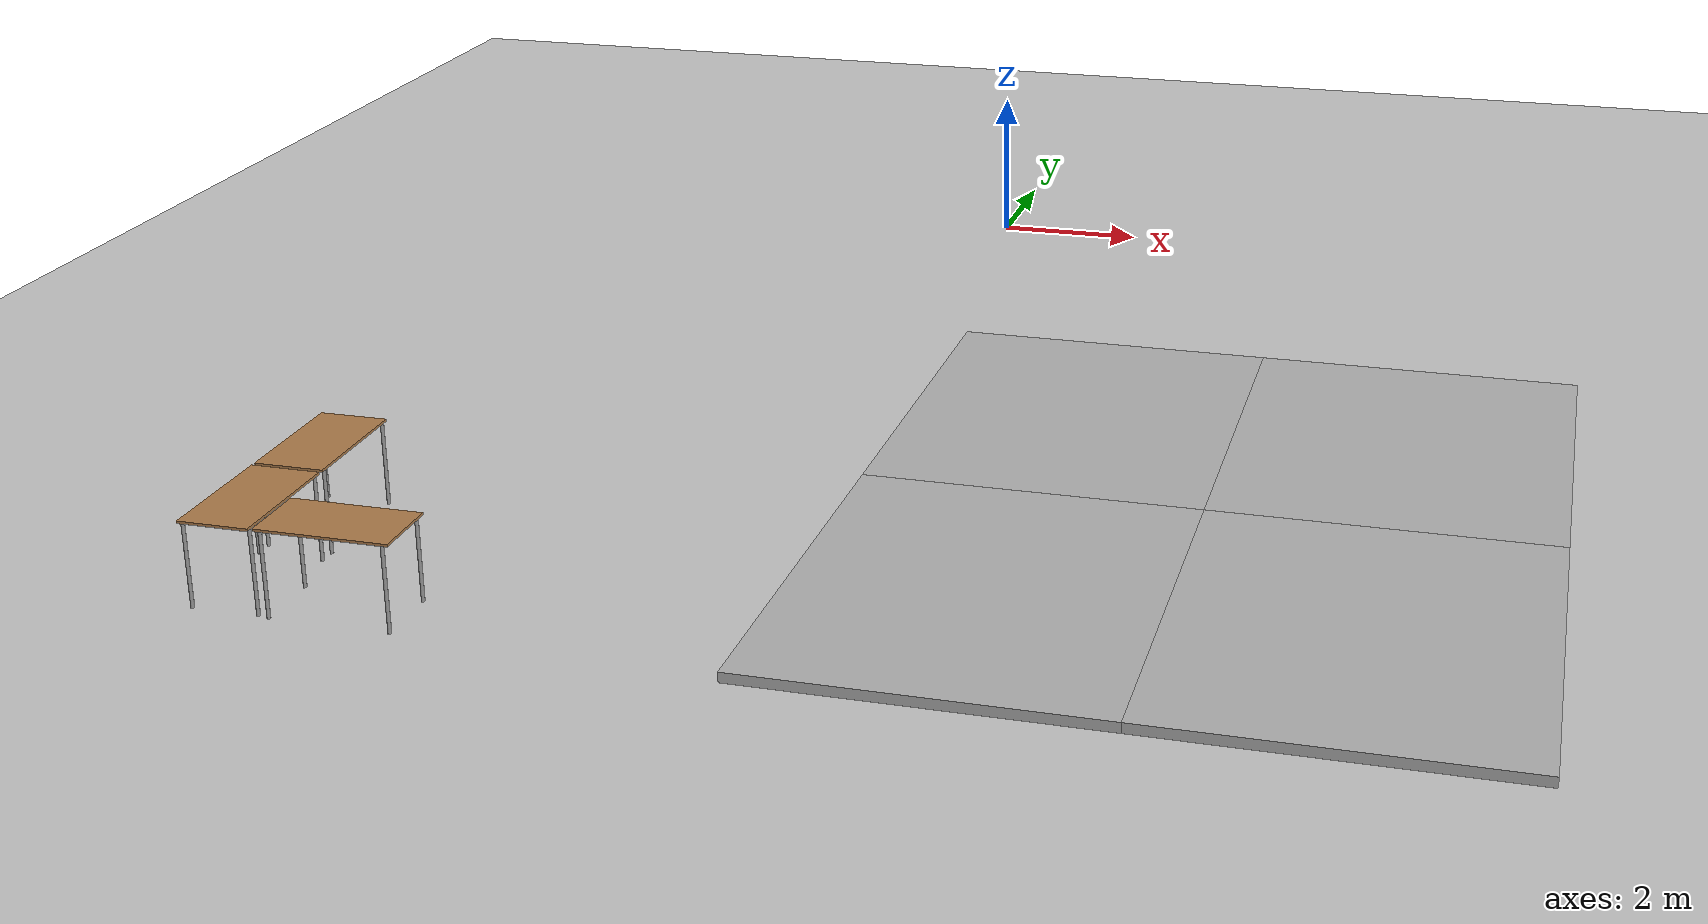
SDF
<sdf version="1.6">
 <world name="default">
  <model name="ground_plane">
   <static>1</static>
   <link name="link">
    <collision name="collision">
     <geometry><plane><normal>0 0 1</normal><size>100 100</size></plane></geometry>
     <surface>
      <contact><collide_bitmask>65535</collide_bitmask></contact>
      <friction><ode><mu>100</mu><mu2>50</mu2></ode></friction>
     </surface>
    </collision>
    <visual name="visual">
     <cast_shadows>0</cast_shadows>
     <geometry><plane><normal>0 0 1</normal><size>100 100</size></plane></geometry>
     <material>
      <script><uri>file://media/materials/scripts/gazebo.material</uri><name>Gazebo/Grey</name></script>
     </material>
    </visual>
   </link>
  </model>
  <model name="table_8">
   <static>1</static>
   <link name="link">
    <collision name="surface">
     <pose>0 0 1 0 -0 0</pose>
     <geometry><box><size>1.5 0.8 0.03</size></box></geometry>
     <surface><friction><ode><mu>0.6</mu><mu2>0.6</mu2></ode></friction></surface>
    </collision>
    <visual name="visual1">
     <pose>0 0 1 0 -0 0</pose>
     <geometry><box><size>1.5 0.8 0.03</size></box></geometry>
     <material>
      <script><uri>file://media/materials/scripts/gazebo.material</uri><name>Gazebo/Wood</name></script>
     </material>
    </visual>
    <collision name="front_left_leg">
     <pose>0.68 0.38 0.5 0 -0 0</pose>
     <geometry><cylinder><radius>0.02</radius><length>1</length></cylinder></geometry>
    </collision>
    <visual name="front_left_leg">
     <pose>0.68 0.38 0.5 0 -0 0</pose>
     <geometry><cylinder><radius>0.02</radius><length>1</length></cylinder></geometry>
     <material>
      <script><uri>file://media/materials/scripts/gazebo.material</uri><name>Gazebo/Grey</name></script>
     </material>
    </visual>
    <collision name="front_right_leg">
     <pose>0.68 -0.38 0.5 0 -0 0</pose>
     <geometry><cylinder><radius>0.02</radius><length>1</length></cylinder></geometry>
    </collision>
    <visual name="front_right_leg">
     <pose>0.68 -0.38 0.5 0 -0 0</pose>
     <geometry><cylinder><radius>0.02</radius><length>1</length></cylinder></geometry>
     <material>
      <script><uri>file://media/materials/scripts/gazebo.material</uri><name>Gazebo/Grey</name></script>
     </material>
    </visual>
    <collision name="back_right_leg">
     <pose>-0.68 -0.38 0.5 0 -0 0</pose>
     <geometry><cylinder><radius>0.02</radius><length>1</length></cylinder></geometry>
    </collision>
    <visual name="back_right_leg">
     <pose>-0.68 -0.38 0.5 0 -0 0</pose>
     <geometry><cylinder><radius>0.02</radius><length>1</length></cylinder></geometry>
     <material>
      <script><uri>file://media/materials/scripts/gazebo.material</uri><name>Gazebo/Grey</name></script>
     </material>
    </visual>
    <collision name="back_left_leg">
     <pose>-0.68 0.38 0.5 0 -0 0</pose>
     <geometry><cylinder><radius>0.02</radius><length>1</length></cylinder></geometry>
    </collision>
    <visual name="back_left_leg">
     <pose>-0.68 0.38 0.5 0 -0 0</pose>
     <geometry><cylinder><radius>0.02</radius><length>1</length></cylinder></geometry>
     <material>
      <script><uri>file://media/materials/scripts/gazebo.material</uri><name>Gazebo/Grey</name></script>
     </material>
    </visual>
   </link>
   <pose>-3.62062 -14.4481 0 0 -0 0</pose>
  </model>
  <model name="table_9">
   <static>1</static>
   <link name="link">
    <collision name="surface">
     <pose>0 0 1 0 -0 0</pose>
     <geometry><box><size>1.5 0.8 0.03</size></box></geometry>
     <surface><friction><ode><mu>0.6</mu><mu2>0.6</mu2></ode></friction></surface>
    </collision>
    <visual name="visual1">
     <pose>0 0 1 0 -0 0</pose>
     <geometry><box><size>1.5 0.8 0.03</size></box></geometry>
     <material>
      <script><uri>file://media/materials/scripts/gazebo.material</uri><name>Gazebo/Wood</name></script>
     </material>
    </visual>
    <collision name="front_left_leg">
     <pose>0.68 0.38 0.5 0 -0 0</pose>
     <geometry><cylinder><radius>0.02</radius><length>1</length></cylinder></geometry>
    </collision>
    <visual name="front_left_leg">
     <pose>0.68 0.38 0.5 0 -0 0</pose>
     <geometry><cylinder><radius>0.02</radius><length>1</length></cylinder></geometry>
     <material>
      <script><uri>file://media/materials/scripts/gazebo.material</uri><name>Gazebo/Grey</name></script>
     </material>
    </visual>
    <collision name="front_right_leg">
     <pose>0.68 -0.38 0.5 0 -0 0</pose>
     <geometry><cylinder><radius>0.02</radius><length>1</length></cylinder></geometry>
    </collision>
    <visual name="front_right_leg">
     <pose>0.68 -0.38 0.5 0 -0 0</pose>
     <geometry><cylinder><radius>0.02</radius><length>1</length></cylinder></geometry>
     <material>
      <script><uri>file://media/materials/scripts/gazebo.material</uri><name>Gazebo/Grey</name></script>
     </material>
    </visual>
    <collision name="back_right_leg">
     <pose>-0.68 -0.38 0.5 0 -0 0</pose>
     <geometry><cylinder><radius>0.02</radius><length>1</length></cylinder></geometry>
    </collision>
    <visual name="back_right_leg">
     <pose>-0.68 -0.38 0.5 0 -0 0</pose>
     <geometry><cylinder><radius>0.02</radius><length>1</length></cylinder></geometry>
     <material>
      <script><uri>file://media/materials/scripts/gazebo.material</uri><name>Gazebo/Grey</name></script>
     </material>
    </visual>
    <collision name="back_left_leg">
     <pose>-0.68 0.38 0.5 0 -0 0</pose>
     <geometry><cylinder><radius>0.02</radius><length>1</length></cylinder></geometry>
    </collision>
    <visual name="back_left_leg">
     <pose>-0.68 0.38 0.5 0 -0 0</pose>
     <geometry><cylinder><radius>0.02</radius><length>1</length></cylinder></geometry>
     <material>
      <script><uri>file://media/materials/scripts/gazebo.material</uri><name>Gazebo/Grey</name></script>
     </material>
    </visual>
   </link>
   <pose>-4.81634 -14.1127 0 0 -0 1.56887</pose>
  </model>
  <model name="table_10">
   <static>1</static>
   <link name="link">
    <collision name="surface">
     <pose>0 0 1 0 -0 0</pose>
     <geometry><box><size>1.5 0.8 0.03</size></box></geometry>
     <surface><friction><ode><mu>0.6</mu><mu2>0.6</mu2></ode></friction></surface>
    </collision>
    <visual name="visual1">
     <pose>0 0 1 0 -0 0</pose>
     <geometry><box><size>1.5 0.8 0.03</size></box></geometry>
     <material>
      <script><uri>file://media/materials/scripts/gazebo.material</uri><name>Gazebo/Wood</name></script>
     </material>
    </visual>
    <collision name="front_left_leg">
     <pose>0.68 0.38 0.5 0 -0 0</pose>
     <geometry><cylinder><radius>0.02</radius><length>1</length></cylinder></geometry>
    </collision>
    <visual name="front_left_leg">
     <pose>0.68 0.38 0.5 0 -0 0</pose>
     <geometry><cylinder><radius>0.02</radius><length>1</length></cylinder></geometry>
     <material>
      <script><uri>file://media/materials/scripts/gazebo.material</uri><name>Gazebo/Grey</name></script>
     </material>
    </visual>
    <collision name="front_right_leg">
     <pose>0.68 -0.38 0.5 0 -0 0</pose>
     <geometry><cylinder><radius>0.02</radius><length>1</length></cylinder></geometry>
    </collision>
    <visual name="front_right_leg">
     <pose>0.68 -0.38 0.5 0 -0 0</pose>
     <geometry><cylinder><radius>0.02</radius><length>1</length></cylinder></geometry>
     <material>
      <script><uri>file://media/materials/scripts/gazebo.material</uri><name>Gazebo/Grey</name></script>
     </material>
    </visual>
    <collision name="back_right_leg">
     <pose>-0.68 -0.38 0.5 0 -0 0</pose>
     <geometry><cylinder><radius>0.02</radius><length>1</length></cylinder></geometry>
    </collision>
    <visual name="back_right_leg">
     <pose>-0.68 -0.38 0.5 0 -0 0</pose>
     <geometry><cylinder><radius>0.02</radius><length>1</length></cylinder></geometry>
     <material>
      <script><uri>file://media/materials/scripts/gazebo.material</uri><name>Gazebo/Grey</name></script>
     </material>
    </visual>
    <collision name="back_left_leg">
     <pose>-0.68 0.38 0.5 0 -0 0</pose>
     <geometry><cylinder><radius>0.02</radius><length>1</length></cylinder></geometry>
    </collision>
    <visual name="back_left_leg">
     <pose>-0.68 0.38 0.5 0 -0 0</pose>
     <geometry><cylinder><radius>0.02</radius><length>1</length></cylinder></geometry>
     <material>
      <script><uri>file://media/materials/scripts/gazebo.material</uri><name>Gazebo/Grey</name></script>
     </material>
    </visual>
   </link>
   <pose>-4.81249 -12.5568 0 0 -0 1.57462</pose>
  </model>
  <model name="mud_box_0">
   <static>1</static>
   <link name="link">
    <collision name="collision"><geometry><box><size>8 10 0.2</size></box></geometry></collision>
    <visual name="visual_1">
     <pose>-2 2.5 0 0 -0 0</pose>
     <cast_shadows>0</cast_shadows>
     <geometry><box><size>4 5 0.2</size></box></geometry>
     <material>
      <script>
       <uri>model://mud_box/materials/scripts</uri>
       <uri>model://mud_box/materials/textures</uri>
       <name>vrc/mud</name>
      </script>
     </material>
    </visual>
    <visual name="visual_2">
     <pose>2 2.5 0 0 -0 0</pose>
     <cast_shadows>0</cast_shadows>
     <geometry><box><size>4 5 0.2</size></box></geometry>
     <material>
      <script>
       <uri>model://mud_box/materials/scripts</uri>
       <uri>model://mud_box/materials/textures</uri>
       <name>vrc/mud</name>
      </script>
     </material>
    </visual>
    <visual name="visual_3">
     <pose>2 -2.5 0 0 -0 0</pose>
     <cast_shadows>0</cast_shadows>
     <geometry><box><size>4 5 0.2</size></box></geometry>
     <material>
      <script>
       <uri>model://mud_box/materials/scripts</uri>
       <uri>model://mud_box/materials/textures</uri>
       <name>vrc/mud</name>
      </script>
     </material>
    </visual>
    <visual name="visual_4">
     <pose>-2 -2.5 0 0 -0 0</pose>
     <cast_shadows>0</cast_shadows>
     <geometry><box><size>4 5 0.2</size></box></geometry>
     <material>
      <script>
       <uri>model://mud_box/materials/scripts</uri>
       <uri>model://mud_box/materials/textures</uri>
       <name>vrc/mud</name>
      </script>
     </material>
    </visual>
   </link>
   <pose>4.62473 -9.94847 0 0 -0 0</pose>
  </model>
 </world>
</sdf>
